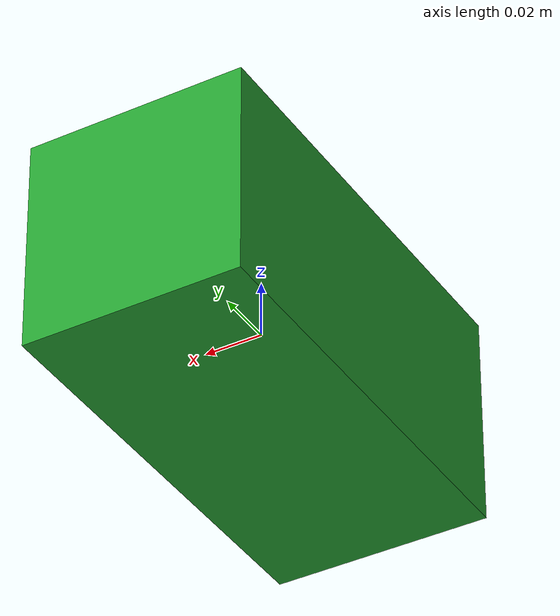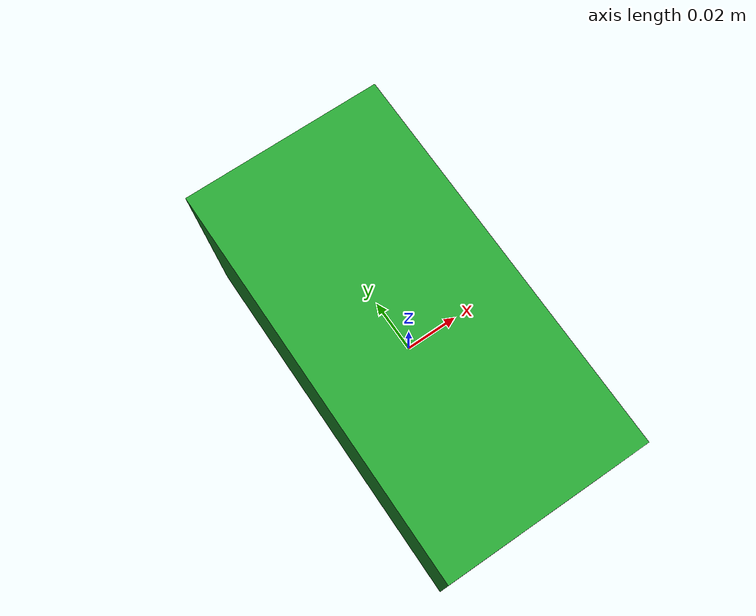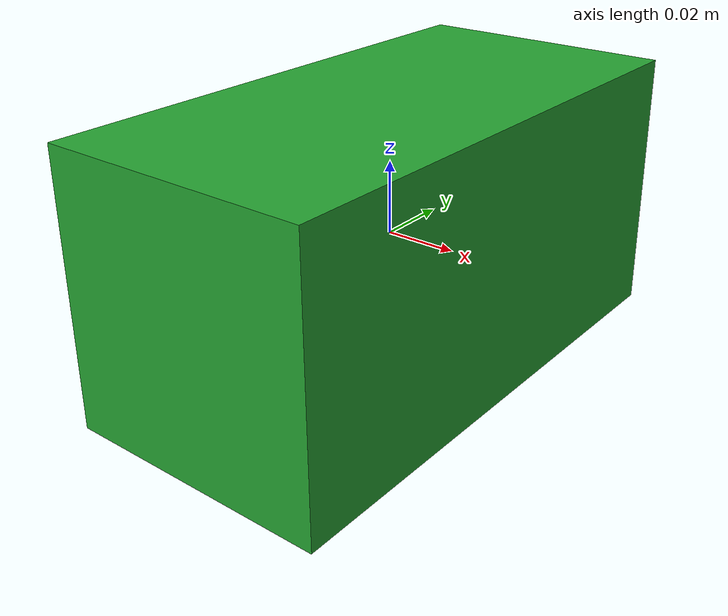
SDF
<?xml version="1.0" ?>
<sdf version="1.5">
  <model name="green_longboi">
    <static>true</static>
    <link name="link">
      <pose>0 0 0 0 0 0</pose>
      <collision name="collision">
        <geometry>
          <box>
            <size>0.075 0.15 0.075</size>
          </box>
        </geometry>
      </collision>
      <visual name="visual">
        <geometry>
          <box>
            <size>0.075 0.15 0.075</size>
          </box>
        </geometry>
        <material>
          <script>
            <uri>file://media/materials/scripts/gazebo.material</uri>
	    <name>Gazebo/Green</name>
          </script>
        </material>
      </visual>
    </link>
  </model>
</sdf>
